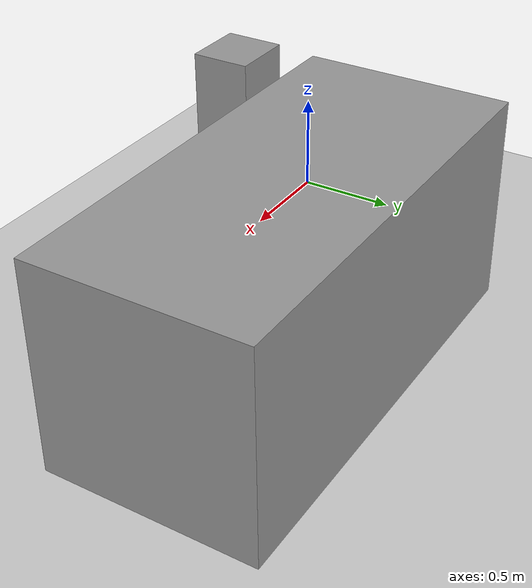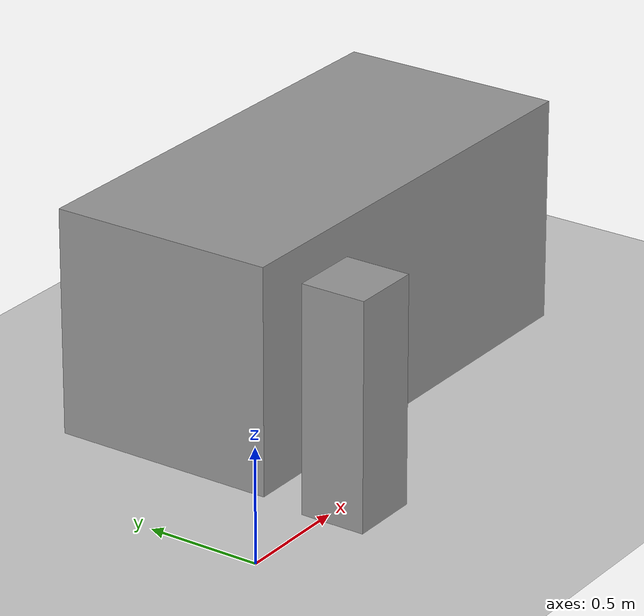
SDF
<sdf version="1.7">
 <world name="default">
  <model name="ground_plane">
   <static>1</static>
   <link name="link">
    <collision name="collision">
     <geometry><plane><normal>0 0 1</normal><size>100 100</size></plane></geometry>
     <surface>
      <contact><collide_bitmask>65535</collide_bitmask></contact>
      <friction><ode><mu>100</mu><mu2>50</mu2></ode></friction>
     </surface>
    </collision>
    <visual name="visual">
     <cast_shadows>0</cast_shadows>
     <geometry><plane><normal>0 0 1</normal><size>100 100</size></plane></geometry>
     <material>
      <script><uri>file://media/materials/scripts/gazebo.material</uri><name>Gazebo/Grey</name></script>
     </material>
    </visual>
   </link>
  </model>
  <model name="cobot_basement">
   <link name="link_0">
    <inertial>
     <mass>0.128403</mass>
     <inertia>
      <ixx>0.0229875</ixx>
      <ixy>0</ixy>
      <ixz>0</ixz>
      <iyy>0.0231141</iyy>
      <iyz>0</iyz>
      <izz>0.0019166</izz>
     </inertia>
    </inertial>
    <visual name="visual">
     <geometry><box><size>0.30899 0.289211 1.0</size></box></geometry>
     <material>
      <lighting>1</lighting>
      <script><uri>file://media/materials/scripts/gazebo.material</uri><name>Gazebo/Grey</name></script>
      <shader type="pixel"/>
     </material>
    </visual>
    <collision name="collision">
     <geometry><box><size>0.30899 0.289211 1.0</size></box></geometry>
     <surface>
      <friction>
       <ode><mu>1</mu><mu2>1</mu2><fdir1>0 0 0</fdir1><slip1>0</slip1><slip2>0</slip2></ode>
       <torsional>
        <coefficient>1</coefficient>
        <patch_radius>0</patch_radius>
        <surface_radius>0</surface_radius>
        <use_patch_radius>1</use_patch_radius>
        <ode><slip>0</slip></ode>
       </torsional>
      </friction>
      <bounce><restitution_coefficient>0</restitution_coefficient><threshold>1e+06</threshold></bounce>
      <contact>
       <collide_without_contact>0</collide_without_contact>
       <collide_without_contact_bitmask>1</collide_without_contact_bitmask>
       <collide_bitmask>1</collide_bitmask>
       <ode>
        <soft_cfm>0</soft_cfm>
        <soft_erp>0.2</soft_erp>
        <kp>1e+13</kp>
        <kd>1</kd>
        <max_vel>0.01</max_vel>
        <min_depth>0</min_depth>
       </ode>
       <bullet>
        <split_impulse>1</split_impulse>
        <split_impulse_penetration_threshold>-0.01</split_impulse_penetration_threshold>
        <soft_cfm>0</soft_cfm>
        <soft_erp>0.2</soft_erp>
        <kp>1e+13</kp>
        <kd>1</kd>
       </bullet>
      </contact>
     </surface>
    </collision>
   </link>
   <static>0</static>
   <pose>0.591072 -0.05611 0.5 0 -0 0</pose>
  </model>
  <model name="place_basament">
   <link name="link_2">
    <inertial>
     <mass>2.08906</mass>
     <inertia>
      <ixx>0.348177</ixx>
      <ixy>0</ixy>
      <ixz>0</ixz>
      <iyy>0.933844</iyy>
      <iyz>0</iyz>
      <izz>0.933844</izz>
     </inertia>
    </inertial>
    <pose>-3e-06 -0 0 0 -0 0</pose>
    <visual name="visual">
     <geometry><box><size>2.08907 1 1</size></box></geometry>
     <material>
      <lighting>1</lighting>
      <script><uri>file://media/materials/scripts/gazebo.material</uri><name>Gazebo/Grey</name></script>
      <shader type="pixel"/>
     </material>
    </visual>
    <collision name="collision">
     <geometry><box><size>2.08907 1 1</size></box></geometry>
     <surface>
      <friction>
       <ode><mu>1</mu><mu2>1</mu2><fdir1>0 0 0</fdir1><slip1>0</slip1><slip2>0</slip2></ode>
       <torsional>
        <coefficient>1</coefficient>
        <patch_radius>0</patch_radius>
        <surface_radius>0</surface_radius>
        <use_patch_radius>1</use_patch_radius>
        <ode><slip>0</slip></ode>
       </torsional>
      </friction>
      <bounce><restitution_coefficient>0</restitution_coefficient><threshold>1e+06</threshold></bounce>
      <contact>
       <collide_without_contact>0</collide_without_contact>
       <collide_without_contact_bitmask>1</collide_without_contact_bitmask>
       <collide_bitmask>1</collide_bitmask>
       <ode>
        <soft_cfm>0</soft_cfm>
        <soft_erp>0.2</soft_erp>
        <kp>1e+13</kp>
        <kd>1</kd>
        <max_vel>0.01</max_vel>
        <min_depth>0</min_depth>
       </ode>
       <bullet>
        <split_impulse>1</split_impulse>
        <split_impulse_penetration_threshold>-0.01</split_impulse_penetration_threshold>
        <soft_cfm>0</soft_cfm>
        <soft_erp>0.2</soft_erp>
        <kp>1e+13</kp>
        <kd>1</kd>
       </bullet>
      </contact>
     </surface>
    </collision>
   </link>
   <static>0</static>
   <pose>1.51805 0.797849 0.5 0 -0 0</pose>
  </model>
 </world>
</sdf>
